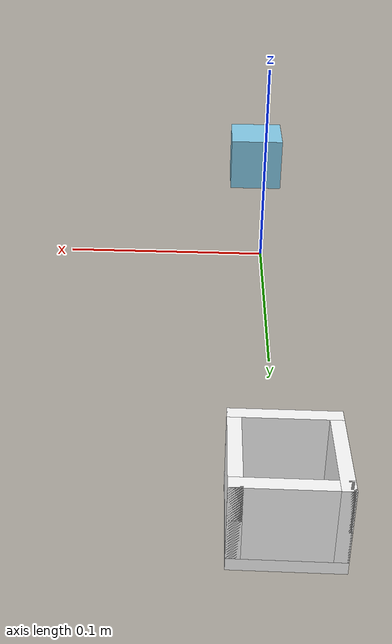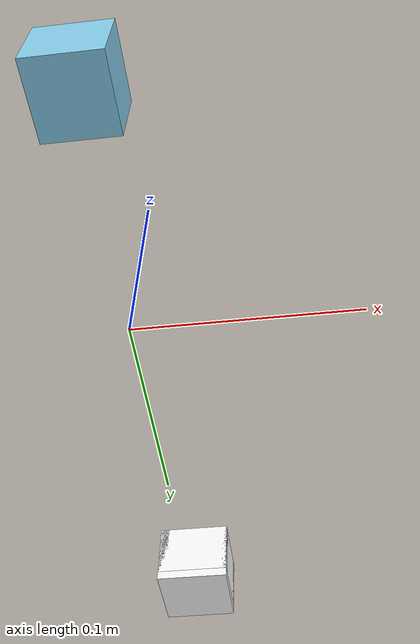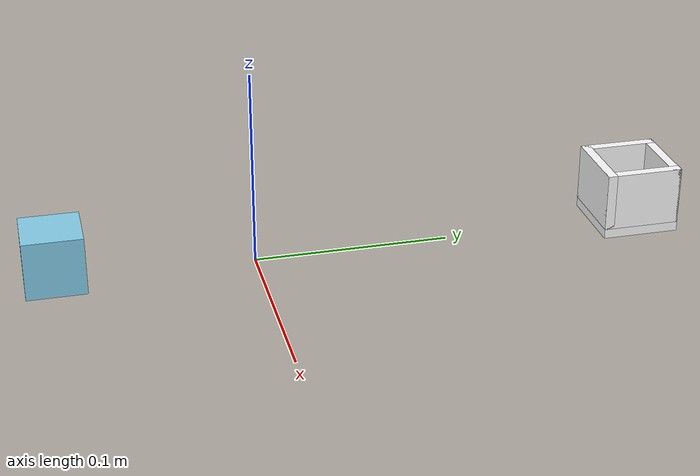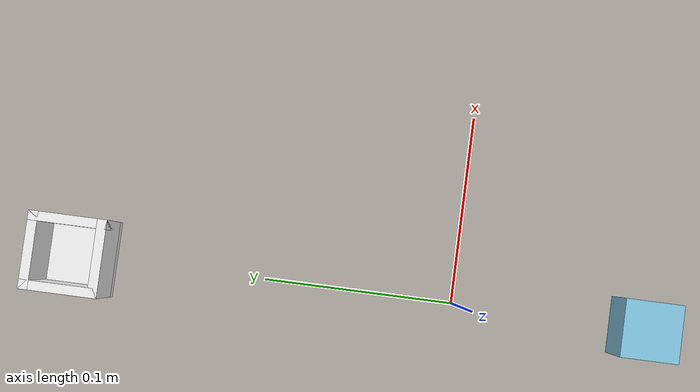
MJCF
<mujoco model="cube_in_box">
  <worldbody>
    <body name="cube_in_box_box" pos="0 0.20 0">
      <geom name="cube_in_box_box_floor" type="box"
            size="0.02 0.02 0.0025" pos="0 0 0.0025" rgba="1 1 1 1"/>
      <geom name="cube_in_box_box_wall_front" type="box"
            size="0.02 0.0025 0.015" pos="0 0.0175 0.02" rgba="1 1 1 1"/>
      <geom name="cube_in_box_box_wall_back" type="box"
            size="0.02 0.0025 0.015" pos="0 -0.0175 0.02" rgba="1 1 1 1"/>
      <geom name="cube_in_box_box_wall_left" type="box"
            size="0.0025 0.02 0.015" pos="0.0175 0 0.02" rgba="1 1 1 1"/>
      <geom name="cube_in_box_box_wall_right" type="box"
            size="0.0025 0.02 0.015" pos="-0.0175 0 0.02" rgba="1 1 1 1"/>
    </body>

    <!-- Body origins are the geometric center of the BOTTOM face, for both
         the box and the cube: geoms are offset upward so "pos z=0" means
         resting on the table plane. -->
    <body name="cube_in_box_cube" pos="0 -0.10 0">
      <freejoint name="cube_in_box_cube_freejoint"/>
      <geom name="cube_in_box_cube_geom" type="box" pos="0 0 0.015"
            size="0.015 0.015 0.015" rgba="0.529 0.808 0.922 1"
            mass="0.02" friction="1.0 0.005 0.0001"/>
    </body>
  </worldbody>
</mujoco>
